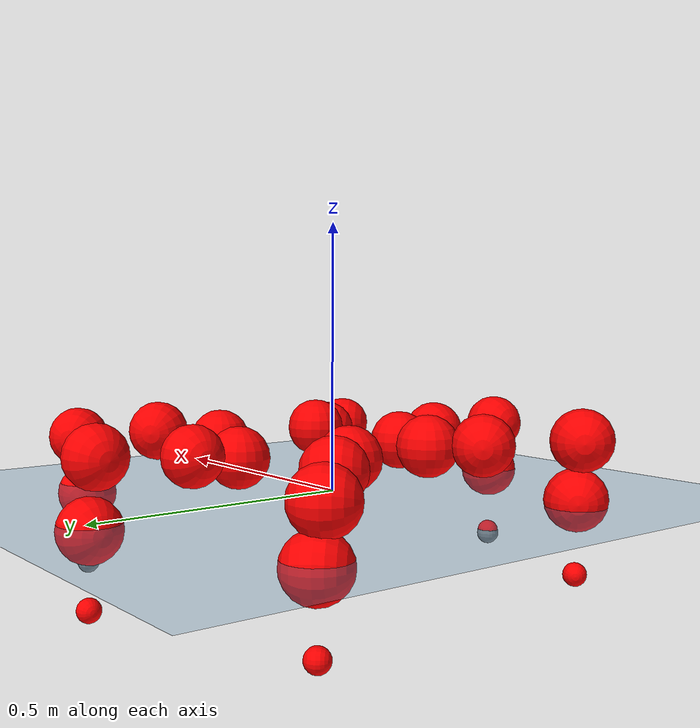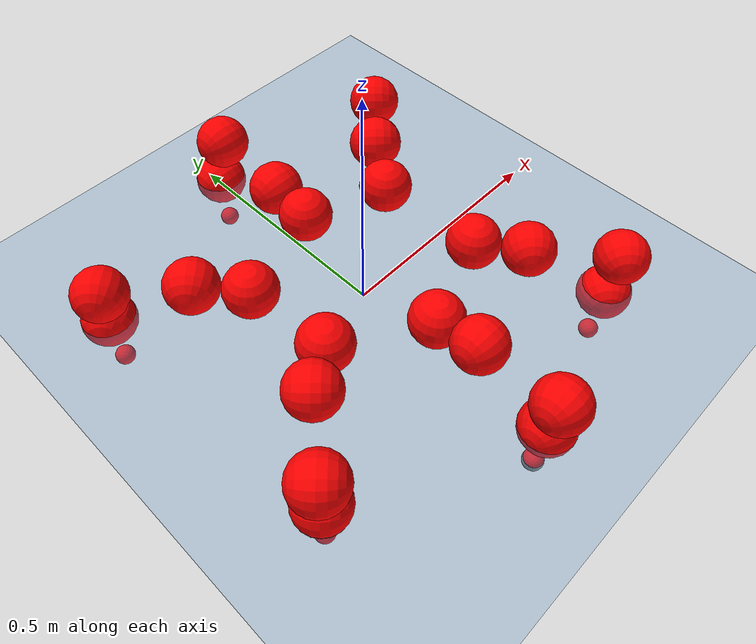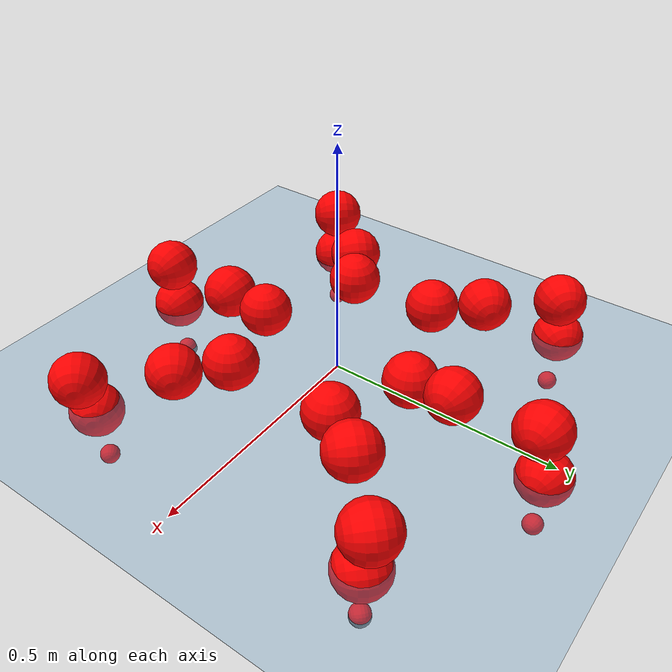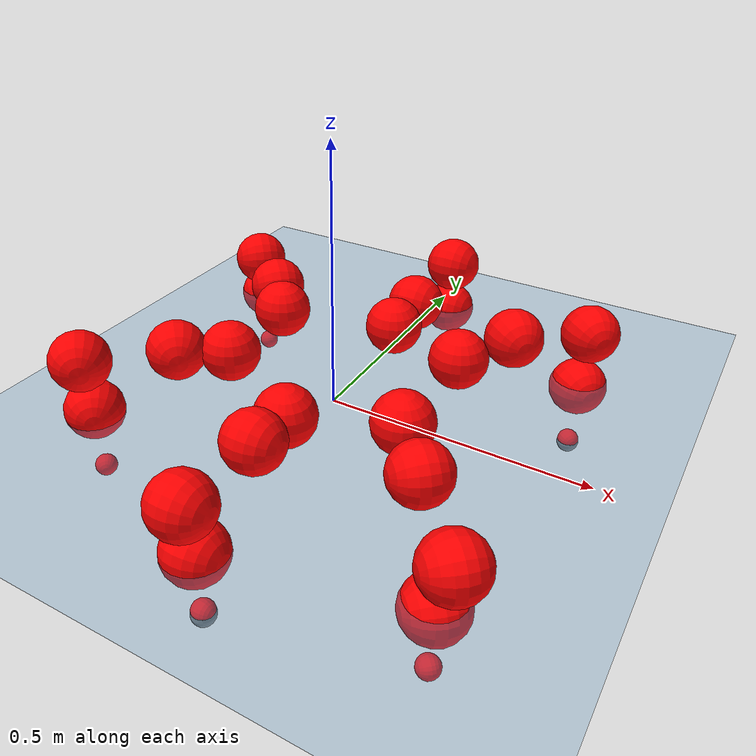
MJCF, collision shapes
<mujoco model="Golem">
  <compiler angle="radian" assetdir="assets" balanceinertia="true" inertiafromgeom="false"/>

  <option timestep="0.005" density="1.2" viscosity="2e-05"/>

  <size nkey="1"/>

  <visual>
    <quality shadowsize="8192"/>
    <map shadowclip="0.5"/>
  </visual>

  <default>
    <default class="/">
      <joint armature="0.01" damping="0.01" frictionloss="0.01"/>
      <geom contype="0" conaffinity="0" group="1" solref="-1000 -80"/>
      <site size="0.01 0.005 0.005" group="5"/>
      <general forcelimited="true" biastype="affine" gainprm="25" biasprm="0 -25 -0.5"/>
      <default class="visual">
        <geom type="mesh" group="2"/>
      </default>
      <default class="collision">
        <geom group="3"/>
      </default>
      <default class="foot">
        <geom size="0.01 0 0" condim="6" group="4" priority="1" solimp="0.015 1 0.01"/>
      </default>
      <default class="reward_collision_sphere">
        <geom group="5" rgba="1 0 0 1"/>
      </default>
    </default>
  </default>

  <asset>
    <texture type="skybox" colorspace="auto" name="//unnamed_texture_0" builtin="gradient" rgb1="0.95 0.95 0.95" rgb2="0.95 0.95 0.95" width="100" height="600"/>
    <texture type="2d" colorspace="auto" name="texplane" builtin="checker" rgb1="0.345 0.575 0.748" rgb2="0.345 0.575 0.748" markrgb="1 1 1" width="512" height="512"/>
    <material name="MatPlane" class="/" texture="texplane" texuniform="true" texrepeat="2 2" specular="0.9"/>
    <mesh name="body" class="/" file="body.stl" scale="0.001 0.001 0.001"/>
    <mesh name="coxa" class="/" file="coxa.stl" scale="0.001 0.001 0.001"/>
    <mesh name="femur" class="/" file="femur.stl" scale="0.001 0.001 0.001"/>
    <mesh name="tibia" class="/" file="tibia.stl" scale="0.001 0.001 0.001"/>
    <mesh name="tarsus" class="/" file="tarsus.stl" scale="0.001 0.001 0.001"/>
  </asset>

  <worldbody>
    <geom name="floor" class="/" size="100 100 0.125" type="plane" group="0" material="MatPlane"/>
    <light name="toplight_shadow" class="/" pos="0 0 5" dir="0.0990148 0.0990148 -0.990148" type="directional" ambient="0.04 0.04 0.04" diffuse="0.55 0.55 0.55" specular="0.12 0.12 0.12"/>
    <light name="toplight_fill" class="/" pos="0 0 5" dir="0.0990148 0.0990148 -0.990148" type="directional" castshadow="false" ambient="0.04 0.04 0.04" diffuse="0.3 0.3 0.3" specular="0.08 0.08 0.08"/>
    <body name="trunk" pos="0.0119554 0.0111405 -0.00591328" quat="0.999989 -0.00215553 -0.000773535 -0.00405132">
      <inertial pos="-0.0118238 -0.00515755 0.016925" quat="0.99839 -0.0355837 0.0420286 0.013581" mass="9.59558" diaginertia="0.0245491 0.0836145 0.0395765"/>
      <joint name="//unnamed_joint_0" type="free"/>
      <geom name="//unnamed_geom_1" class="/" pos="0 0 0.0896702" quat="1 0 0 0" type="mesh" rgba="0.9 0.9 0.9 1" mesh="body"/>
      <site name="imu" class="/" pos="0.0895711 -0.0596385 0.1501" size="0.0141226"/>
      <camera name="track" class="/" pos="0 -3.19108 0" quat="0.707107 0.707107 0 0" mode="trackcom"/>
      <camera name="ego_camera" class="/" pos="0.16122 0 0.14011" quat="-0.5 -0.5 0.5 0.5"/>
      <body name="coxa_RR" pos="-0.212617 -0.117941 0.104388" quat="0.380337 -0.000948262 0.00284327 -0.924843">
        <inertial pos="0.00193332 -0.00539728 -0.00813902" quat="0.999951 0.00434313 0.00794247 0.00395544" mass="0.511306" diaginertia="0.0306695 0.0898572 0.0604525"/>
        <joint name="coxa_joint_RR" class="/" pos="0 0 0" axis="0.0152054 -0.00552279 -0.999869" range="-3.15657 3.32023" armature="0.0183685" damping="0.044825" frictionloss="0.0170534"/>
        <geom name="//unnamed_geom_2" class="/" type="mesh" rgba="0.2 0.2 0.2 1" mesh="coxa"/>
        <geom name="//unnamed_geom_3" class="reward_collision_sphere" size="0.0564906" pos="-0.0372046 0 0"/>
        <body name="femur_RR" pos="0.0605427 -0.0179319 0.0050323" quat="0.499651 -0.499992 0.499879 0.500478">
          <inertial pos="0.0170816 -0.00122088 0.0182158" quat="0.996212 -0.00615765 0.0863995 0.00761603" mass="0.668763" diaginertia="0.0355659 0.126287 0.0669855"/>
          <joint name="femur_joint_RR" class="/" pos="0 0 0" axis="0.0354222 0.034639 -0.998772" range="-2.99415 3.16277" armature="0.0162497" damping="0" frictionloss="0.0135435"/>
          <geom name="//unnamed_geom_4" class="/" type="mesh" rgba="0.9 0.9 0.9 1" mesh="femur"/>
          <geom name="//unnamed_geom_5" class="reward_collision_sphere" size="0.0564906"/>
          <body name="tibia_RR" pos="-0.010413 -0.170738 0.0167922" quat="0.00137406 0.999998 -0.000613769 0.00121855">
            <inertial pos="-0.000379086 -0.000153347 0.0148616" quat="0.99847 -0.0495815 0.0172713 0.0173778" mass="0.38201" diaginertia="0.0241442 0.066293 0.0405957"/>
            <joint name="tibia_joint_RR" class="/" pos="0 0 0" axis="-0.0125274 -0.0688308 0.99755" stiffness="0.0523935" range="-2.91436 3.13265" armature="0.0211618" damping="0.0264478" frictionloss="0.0236431"/>
            <geom name="//unnamed_geom_6" class="/" type="mesh" rgba="0.2 0.2 0.2 1" mesh="tibia"/>
            <geom name="//unnamed_geom_7" class="reward_collision_sphere" size="0.0564906"/>
            <body name="tarsus_RR" pos="0.104984 -0.00888902 -0.000739605" quat="0.999999 0.00101227 -0.000305932 0.000319102">
              <inertial pos="0.0835229 0.00222612 -0.00193403" quat="0.522708 0.476187 0.439923 0.553616" mass="0.496991" diaginertia="0.0297145 0.114417 0.0502653"/>
              <joint name="tarsus_joint_RR" class="/" pos="0 0 0" axis="0.0791421 0.0391143 0.996096" range="-3.06369 3.37513" armature="0.0203478" damping="0.00409451" frictionloss="0.00898011"/>
              <geom name="//unnamed_geom_8" class="/" type="mesh" rgba="0.9 0.9 0.9 1" mesh="tarsus"/>
              <geom name="foot_1" class="foot" size="0.0135141" pos="0.138897 0 0" quat="0 -0.707107 0 0.707107"/>
              <geom name="//unnamed_geom_10" class="reward_collision_sphere" size="0.0564906"/>
              <geom name="//unnamed_geom_11" class="reward_collision_sphere" size="0.021184" pos="0.133316 0 0"/>
              <site name="foot_1" class="foot" pos="0.138897 0 0" quat="0 -0.707107 0 0.707107" size="0.0141226"/>
            </body>
          </body>
        </body>
      </body>
      <body name="coxa_RM" pos="0.00528976 -0.227722 0.0858936" quat="0.708068 -0.00265807 0.00830672 -0.70609">
        <inertial pos="0.0141275 -0.00253416 0.0159104" quat="0.997836 0.00962683 0.0142898 -0.0634568" mass="0.549555" diaginertia="0.0407033 0.102201 0.0658397"/>
        <joint name="coxa_joint_RM" class="/" pos="0 0 0" axis="0.0041494 -0.00124658 -0.999991" range="-3.01753 3.23346" armature="0.0103031" damping="0.0319787" frictionloss="0.020691"/>
        <geom name="//unnamed_geom_12" class="/" type="mesh" rgba="0.2 0.2 0.2 1" mesh="coxa"/>
        <geom name="//unnamed_geom_13" class="reward_collision_sphere" size="0.0564906" pos="-0.0372046 0 0"/>
        <body name="femur_RM" pos="0.059431 0.00549786 0.0122221" quat="0.495158 -0.501168 0.499651 0.503982">
          <inertial pos="-0.0162514 -0.00180013 -0.0002194" quat="0.996402 0.0140068 -0.0809374 0.0208944" mass="0.608242" diaginertia="0.0266791 0.121024 0.0574941"/>
          <joint name="femur_joint_RM" class="/" pos="0 0 0" axis="0.067849 -0.0184592 -0.997525" stiffness="0.0548984" range="-3.1951 3.16666" armature="0.00854909" damping="0" frictionloss="0.0172529"/>
          <geom name="//unnamed_geom_14" class="/" type="mesh" rgba="0.9 0.9 0.9 1" mesh="femur"/>
          <geom name="//unnamed_geom_15" class="reward_collision_sphere" size="0.0564906"/>
          <body name="tibia_RM" pos="-0.00392586 -0.176418 0.000580874" quat="0.000245562 1 -0.000207293 -0.000131971">
            <inertial pos="0.0170375 -0.00896004 0.0112416" quat="0.999628 -0.00448513 0.0036983 -0.0266377" mass="0.444266" diaginertia="0.0222086 0.10964 0.0597134"/>
            <joint name="tibia_joint_RM" class="/" pos="0 0 0" axis="0.0596422 0.0027081 0.998216" stiffness="0.0322658" range="-3.20313 3.31543" armature="0.0124387" damping="0.00660666" frictionloss="0.0202154"/>
            <geom name="//unnamed_geom_16" class="/" type="mesh" rgba="0.2 0.2 0.2 1" mesh="tibia"/>
            <geom name="//unnamed_geom_17" class="reward_collision_sphere" size="0.0564906"/>
            <body name="tarsus_RM" pos="0.0984133 -0.00910362 -0.00580592" quat="0.999998 0.0016878 0.000371033 0.000273638">
              <inertial pos="0.0808711 0.00768344 0.00418489" quat="0.508524 0.519572 0.492782 0.478136" mass="0.481192" diaginertia="0.0314625 0.0953265 0.0406645"/>
              <joint name="tarsus_joint_RM" class="/" pos="0 0 0" axis="-0.0641399 -0.0195212 0.99775" range="-3.21566 3.1333" armature="0.0153227" damping="0.012511" frictionloss="0.0113862"/>
              <geom name="//unnamed_geom_18" class="/" type="mesh" rgba="0.9 0.9 0.9 1" mesh="tarsus"/>
              <geom name="foot_2" class="foot" size="0.0223723" pos="0.138897 0 0" quat="0 -0.707107 0 0.707107"/>
              <geom name="//unnamed_geom_20" class="reward_collision_sphere" size="0.0564906"/>
              <geom name="//unnamed_geom_21" class="reward_collision_sphere" size="0.021184" pos="0.133316 0 0"/>
              <site name="foot_2" class="foot" pos="0.138897 0 0" quat="0 -0.707107 0 0.707107" size="0.0141226"/>
            </body>
          </body>
        </body>
      </body>
      <body name="coxa_RF" pos="0.217796 -0.147371 0.0987795" quat="0.923941 0.000391574 -0.000181217 -0.382534">
        <inertial pos="0.0178624 -0.00569275 -0.00306898" quat="0.997376 0.0671614 0.00408637 0.0267102" mass="0.383211" diaginertia="0.0224177 0.110562 0.0487072"/>
        <joint name="coxa_joint_RF" class="/" pos="0 0 0" axis="0.00141759 0.00118636 -0.999998" range="-2.95563 3.12292" armature="0.00544611" damping="0.043885" frictionloss="0.0197704"/>
        <geom name="//unnamed_geom_22" class="/" type="mesh" rgba="0.2 0.2 0.2 1" mesh="coxa"/>
        <geom name="//unnamed_geom_23" class="reward_collision_sphere" size="0.0564906" pos="-0.0372046 0 0"/>
        <body name="femur_RF" pos="0.0752444 -0.00701225 -0.0158981" quat="0.497061 -0.499833 0.500538 0.502552">
          <inertial pos="-0.0108835 -0.0169718 -0.0104837" quat="0.999794 -0.0193377 -0.00524557 0.00338839" mass="0.639559" diaginertia="0.0246413 0.120144 0.0562856"/>
          <joint name="femur_joint_RF" class="/" pos="0 0 0" axis="0.0401535 0.0421665 -0.998303" stiffness="0.082844" range="-3.24957 3.38146" armature="0.0134583" damping="0" frictionloss="0.0190207"/>
          <geom name="//unnamed_geom_24" class="/" type="mesh" rgba="0.9 0.9 0.9 1" mesh="femur"/>
          <geom name="//unnamed_geom_25" class="reward_collision_sphere" size="0.0564906"/>
          <body name="tibia_RF" pos="0.00952724 -0.186044 -0.0136717" quat="-5.45939e-05 0.999998 0.00121949 -0.00141764">
            <inertial pos="0.0156186 0.0126068 -0.0145038" quat="0.998516 -0.0482123 -0.0253317 0.000527241" mass="0.468224" diaginertia="0.0296832 0.0972961 0.0517301"/>
            <joint name="tibia_joint_RF" class="/" pos="0 0 0" axis="-0.0218167 -0.0190585 0.99958" range="-3.21523 3.39578" armature="0.0165148" damping="0.100083" frictionloss="0.0116429"/>
            <geom name="//unnamed_geom_26" class="/" type="mesh" rgba="0.2 0.2 0.2 1" mesh="tibia"/>
            <geom name="//unnamed_geom_27" class="reward_collision_sphere" size="0.0564906"/>
            <body name="tarsus_RF" pos="0.0950383 -0.0157495 0.0152557" quat="0.999981 0.00145755 -0.00240961 -0.00542544">
              <inertial pos="0.0779634 0.000167852 0.0027874" quat="0.485123 0.497031 0.526692 0.490113" mass="0.512124" diaginertia="0.0262488 0.0819655 0.0643797"/>
              <joint name="tarsus_joint_RF" class="/" pos="0 0 0" axis="-0.00745469 -0.041145 0.999125" stiffness="0.0354812" range="-2.93181 3.11783" armature="0.00481604" damping="0" frictionloss="0.00144628"/>
              <geom name="//unnamed_geom_28" class="/" type="mesh" rgba="0.9 0.9 0.9 1" mesh="tarsus"/>
              <geom name="foot_3" class="foot" size="0.00549237" pos="0.138897 0 0" quat="0 -0.707107 0 0.707107"/>
              <geom name="//unnamed_geom_30" class="reward_collision_sphere" size="0.0564906"/>
              <geom name="//unnamed_geom_31" class="reward_collision_sphere" size="0.021184" pos="0.133316 0 0"/>
              <site name="foot_3" class="foot" pos="0.138897 0 0" quat="0 -0.707107 0 0.707107" size="0.0141226"/>
            </body>
          </body>
        </body>
      </body>
      <body name="coxa_LR" pos="-0.228729 0.124889 0.101982" quat="0.37624 0.00330451 0.00169094 0.926515">
        <inertial pos="0.00537101 -0.00673363 0.017454" quat="0.997719 0.0291406 0.0596156 0.0124288" mass="0.819511" diaginertia="0.0361035 0.129177 0.0615987"/>
        <joint name="coxa_joint_LR" class="/" pos="0 0 0" axis="-0.000295199 -0.000250993 -1" range="-2.98969 2.78751" armature="0.00475574" damping="0" frictionloss="0.0264988"/>
        <geom name="//unnamed_geom_32" class="/" type="mesh" rgba="0.2 0.2 0.2 1" mesh="coxa"/>
        <geom name="//unnamed_geom_33" class="reward_collision_sphere" size="0.0564906" pos="-0.0372046 0 0"/>
        <body name="femur_LR" pos="0.0768791 -0.0115143 -0.00160747" quat="0.499927 -0.501042 0.500381 0.498647">
          <inertial pos="-0.000366406 0.00412404 0.00440905" quat="0.998519 -0.00704 -0.0539247 0.00133071" mass="0.633886" diaginertia="0.0370239 0.0908755 0.0580724"/>
          <joint name="femur_joint_LR" class="/" pos="0 0 0" axis="0.0360818 0.0131402 0.999262" stiffness="0.0580072" range="-3.20816 3.40827" armature="0.00610735" damping="0" frictionloss="0.0194497"/>
          <geom name="//unnamed_geom_34" class="/" type="mesh" rgba="0.9 0.9 0.9 1" mesh="femur"/>
          <geom name="//unnamed_geom_35" class="reward_collision_sphere" size="0.0564906"/>
          <body name="tibia_LR" pos="0.0143569 -0.176272 0.00743527" quat="-0.00615045 0.999977 0.00220537 0.00166878">
            <inertial pos="-0.0116444 -0.0165254 -0.00253933" quat="0.997609 -0.0505312 -0.00362953 -0.0470172" mass="0.685873" diaginertia="0.023921 0.08934 0.0691336"/>
            <joint name="tibia_joint_LR" class="/" pos="0 0 0" axis="-0.00107207 0.00140552 -0.999998" range="-3.09637 3.16626" armature="0.00818657" damping="0" frictionloss="0.00649462"/>
            <geom name="//unnamed_geom_36" class="/" type="mesh" rgba="0.2 0.2 0.2 1" mesh="tibia"/>
            <geom name="//unnamed_geom_37" class="reward_collision_sphere" size="0.0564906"/>
            <body name="tarsus_LR" pos="0.0936833 0.008093 0.0100589" quat="0.999989 -0.00255715 -0.000940868 0.00383873">
              <inertial pos="0.0843734 0.0116089 0.00819958" quat="0.54006 0.478741 0.49487 0.48399" mass="0.733844" diaginertia="0.0385382 0.124413 0.066477"/>
              <joint name="tarsus_joint_LR" class="/" pos="0 0 0" axis="0.00803962 0.0190807 -0.999786" range="-3.02821 3.26214" armature="0.0273143" damping="0" frictionloss="0.0199276"/>
              <geom name="//unnamed_geom_38" class="/" type="mesh" rgba="0.9 0.9 0.9 1" mesh="tarsus"/>
              <geom name="foot_4" class="foot" size="0.010708" pos="0.138897 0 0" quat="0.707107 0 -0.707107 0"/>
              <geom name="//unnamed_geom_40" class="reward_collision_sphere" size="0.0564906"/>
              <geom name="//unnamed_geom_41" class="reward_collision_sphere" size="0.021184" pos="0.133316 0 0"/>
              <site name="foot_4" class="foot" pos="0.138897 0 0" quat="0.707107 0 -0.707107 0" size="0.0141226"/>
            </body>
          </body>
        </body>
      </body>
      <body name="coxa_LM" pos="0.0120307 0.218734 0.0854995" quat="0.708817 0.00464461 -0.00774306 0.705335">
        <inertial pos="-0.0144718 0.0155342 0.0110815" quat="0.997443 -0.0342611 0.0324598 -0.0536612" mass="0.543331" diaginertia="0.0299643 0.0840942 0.0485165"/>
        <joint name="coxa_joint_LM" class="/" pos="0 0 0" axis="0.00101552 -0.00199843 -0.999997" range="-3.09312 3.0965" armature="0.002157" damping="0.0590148" frictionloss="0.00857901"/>
        <geom name="//unnamed_geom_42" class="/" type="mesh" rgba="0.2 0.2 0.2 1" mesh="coxa"/>
        <geom name="//unnamed_geom_43" class="reward_collision_sphere" size="0.0564906" pos="-0.0372046 0 0"/>
        <body name="femur_LM" pos="0.0566507 -0.000248943 0.0092984" quat="0.50114 -0.502308 0.502131 0.494378">
          <inertial pos="0.0141077 -6.78267e-05 0.0156254" quat="0.998458 0.0160996 -0.0204108 -0.0490521" mass="0.38366" diaginertia="0.0266784 0.0819199 0.045361"/>
          <joint name="femur_joint_LM" class="/" pos="0 0 0" axis="-0.00751252 0.0139889 0.999874" stiffness="0.00501574" range="-3.37321 2.99411" armature="0.0051746" damping="0.0561634" frictionloss="0.013968"/>
          <geom name="//unnamed_geom_44" class="/" type="mesh" rgba="0.9 0.9 0.9 1" mesh="femur"/>
          <geom name="//unnamed_geom_45" class="reward_collision_sphere" size="0.0564906"/>
          <body name="tibia_LM" pos="-0.0113665 -0.180637 0.000444809" quat="-0.000932488 0.999993 -0.00251521 -0.00262545">
            <inertial pos="-0.0171339 -0.0177885 -0.0181914" quat="0.999953 0.00146075 -0.00403194 0.00873189" mass="0.592753" diaginertia="0.0342962 0.128664 0.0472288"/>
            <joint name="tibia_joint_LM" class="/" pos="0 0 0" axis="-0.0510413 -0.0147785 -0.998587" stiffness="0.0643244" range="-3.28566 3.1046" armature="0.00504835" damping="0" frictionloss="0.0235885"/>
            <geom name="//unnamed_geom_46" class="/" type="mesh" rgba="0.2 0.2 0.2 1" mesh="tibia"/>
            <geom name="//unnamed_geom_47" class="reward_collision_sphere" size="0.0564906"/>
            <body name="tarsus_LM" pos="0.117744 0.0148635 -0.0139703" quat="0.999982 0.00424222 -0.00248282 -0.00345202">
              <inertial pos="0.0659229 -0.00905722 -0.0114999" quat="0.498748 0.518485 0.488231 0.494019" mass="0.438124" diaginertia="0.0277111 0.0620627 0.0471845"/>
              <joint name="tarsus_joint_LM" class="/" pos="0 0 0" axis="0.0582502 0.0381498 -0.997573" range="-2.76075 3.04204" armature="0.0132191" damping="0" frictionloss="0.0133527"/>
              <geom name="//unnamed_geom_48" class="/" type="mesh" rgba="0.9 0.9 0.9 1" mesh="tarsus"/>
              <geom name="foot_5" class="foot" size="0.0136993" pos="0.138897 0 0" quat="0.707107 0 -0.707107 0"/>
              <geom name="//unnamed_geom_50" class="reward_collision_sphere" size="0.0564906"/>
              <geom name="//unnamed_geom_51" class="reward_collision_sphere" size="0.021184" pos="0.133316 0 0"/>
              <site name="foot_5" class="foot" pos="0.138897 0 0" quat="0.707107 0 -0.707107 0" size="0.0141226"/>
            </body>
          </body>
        </body>
      </body>
      <body name="coxa_LF" pos="0.20887 0.142614 0.0944511" quat="0.920839 0.000119743 0.000795703 0.389942">
        <inertial pos="0.00168224 -0.0174406 0.00261552" quat="0.999858 0.014614 0.00525526 -0.00657862" mass="0.51573" diaginertia="0.0261587 0.0670448 0.0409515"/>
        <joint name="coxa_joint_LF" class="/" pos="0 0 0" axis="0.00775525 0.0585802 -0.998253" range="-3.1621 3.0573" armature="0.00174376" damping="0" frictionloss="0.00884089"/>
        <geom name="//unnamed_geom_52" class="/" type="mesh" rgba="0.2 0.2 0.2 1" mesh="coxa"/>
        <geom name="//unnamed_geom_53" class="reward_collision_sphere" size="0.0564906" pos="-0.0372046 0 0"/>
        <body name="femur_LF" pos="0.0809211 0.0188709 0.0165672" quat="0.494581 -0.503097 0.499147 0.503126">
          <inertial pos="-0.0123596 0.00611496 -0.018157" quat="0.997132 0.0101036 -0.0518538 -0.0541879" mass="0.528627" diaginertia="0.0334217 0.0791818 0.0564996"/>
          <joint name="femur_joint_LF" class="/" pos="0 0 0" axis="-0.0530089 -0.0420894 0.997707" stiffness="0.0579386" range="-3.09486 3.47832" armature="0.0144275" damping="0.0710335" frictionloss="0.00933269"/>
          <geom name="//unnamed_geom_54" class="/" type="mesh" rgba="0.9 0.9 0.9 1" mesh="femur"/>
          <geom name="//unnamed_geom_55" class="reward_collision_sphere" size="0.0564906"/>
          <body name="tibia_LF" pos="0.012721 -0.162202 -0.00319924" quat="-0.00238876 0.999971 0.000482143 0.00726596">
            <inertial pos="-0.0065772 0.0165337 0.000535862" quat="0.999629 -0.00270432 0.0271002 -8.90027e-05" mass="0.581396" diaginertia="0.0331192 0.102333 0.0591546"/>
            <joint name="tibia_joint_LF" class="/" pos="0 0 0" axis="-0.0342112 0.0636921 -0.997383" stiffness="0.0166197" range="-2.84874 3.06171" armature="0.00623754" damping="0.00589641" frictionloss="0.0028862"/>
            <geom name="//unnamed_geom_56" class="/" type="mesh" rgba="0.2 0.2 0.2 1" mesh="tibia"/>
            <geom name="//unnamed_geom_57" class="reward_collision_sphere" size="0.0564906"/>
            <body name="tarsus_LF" pos="0.11346 -0.0116222 0.00937979" quat="0.999957 -0.00518086 -0.00464593 0.00610506">
              <inertial pos="0.0862757 0.00532105 0.00343004" quat="0.488136 0.517256 0.498062 0.496088" mass="0.533745" diaginertia="0.0307254 0.106583 0.0609684"/>
              <joint name="tarsus_joint_LF" class="/" pos="0 0 0" axis="-0.0817082 0.0395898 -0.99587" range="-3.30648 3.42752" armature="0.00849604" damping="0.082107" frictionloss="0.00689809"/>
              <geom name="//unnamed_geom_58" class="/" type="mesh" rgba="0.9 0.9 0.9 1" mesh="tarsus"/>
              <geom name="foot_6" class="foot" size="0.0218272" pos="0.138897 0 0" quat="0.707107 0 -0.707107 0"/>
              <geom name="//unnamed_geom_60" class="reward_collision_sphere" size="0.0564906"/>
              <geom name="//unnamed_geom_61" class="reward_collision_sphere" size="0.021184" pos="0.133316 0 0"/>
              <site name="foot_6" class="foot" pos="0.138897 0 0" quat="0.707107 0 -0.707107 0" size="0.0141226"/>
            </body>
          </body>
        </body>
      </body>
    </body>
  </worldbody>

  <contact>
    <pair class="/" geom1="floor" geom2="foot_1" name="//unnamed_contact_0"/>
    <pair class="/" geom1="floor" geom2="foot_2" name="//unnamed_contact_1"/>
    <pair class="/" geom1="floor" geom2="foot_3" name="//unnamed_contact_2"/>
    <pair class="/" geom1="floor" geom2="foot_4" name="//unnamed_contact_3"/>
    <pair class="/" geom1="floor" geom2="foot_5" name="//unnamed_contact_4"/>
    <pair class="/" geom1="floor" geom2="foot_6" name="//unnamed_contact_5"/>
  </contact>

  <actuator>
    <general name="coxa_joint_RR" class="/" joint="coxa_joint_RR" forcerange="-16.7518 16.7518" gainprm="27.8896" biasprm="0 -27.8896 -0.909246"/>
    <general name="femur_joint_RR" class="/" joint="femur_joint_RR" forcerange="-6.53109 6.53109" gainprm="27.8896" biasprm="0 -27.8896 -0.909246"/>
    <general name="tibia_joint_RR" class="/" joint="tibia_joint_RR" forcerange="-17.1897 17.1897" gainprm="27.8896" biasprm="0 -27.8896 -0.909246"/>
    <general name="tarsus_joint_RR" class="/" joint="tarsus_joint_RR" forcerange="-6.17774 6.17774" gainprm="27.8896" biasprm="0 -27.8896 -0.909246"/>
    <general name="coxa_joint_RM" class="/" joint="coxa_joint_RM" forcerange="-10.0231 10.0231" gainprm="27.8896" biasprm="0 -27.8896 -0.909246"/>
    <general name="femur_joint_RM" class="/" joint="femur_joint_RM" forcerange="-10.6557 10.6557" gainprm="27.8896" biasprm="0 -27.8896 -0.909246"/>
    <general name="tibia_joint_RM" class="/" joint="tibia_joint_RM" forcerange="-16.3399 16.3399" gainprm="27.8896" biasprm="0 -27.8896 -0.909246"/>
    <general name="tarsus_joint_RM" class="/" joint="tarsus_joint_RM" forcerange="-3.59074 3.59074" gainprm="27.8896" biasprm="0 -27.8896 -0.909246"/>
    <general name="coxa_joint_RF" class="/" joint="coxa_joint_RF" forcerange="-7.84066 7.84066" gainprm="27.8896" biasprm="0 -27.8896 -0.909246"/>
    <general name="femur_joint_RF" class="/" joint="femur_joint_RF" forcerange="-11.469 11.469" gainprm="27.8896" biasprm="0 -27.8896 -0.909246"/>
    <general name="tibia_joint_RF" class="/" joint="tibia_joint_RF" forcerange="-3.99079 3.99079" gainprm="27.8896" biasprm="0 -27.8896 -0.909246"/>
    <general name="tarsus_joint_RF" class="/" joint="tarsus_joint_RF" forcerange="-6.62207 6.62207" gainprm="27.8896" biasprm="0 -27.8896 -0.909246"/>
    <general name="coxa_joint_LR" class="/" joint="coxa_joint_LR" forcerange="-10.1559 10.1559" gainprm="27.8896" biasprm="0 -27.8896 -0.909246"/>
    <general name="femur_joint_LR" class="/" joint="femur_joint_LR" forcerange="-15.8126 15.8126" gainprm="27.8896" biasprm="0 -27.8896 -0.909246"/>
    <general name="tibia_joint_LR" class="/" joint="tibia_joint_LR" forcerange="-13.9585 13.9585" gainprm="27.8896" biasprm="0 -27.8896 -0.909246"/>
    <general name="tarsus_joint_LR" class="/" joint="tarsus_joint_LR" forcerange="-15.0104 15.0104" gainprm="27.8896" biasprm="0 -27.8896 -0.909246"/>
    <general name="coxa_joint_LM" class="/" joint="coxa_joint_LM" forcerange="-13.9602 13.9602" gainprm="27.8896" biasprm="0 -27.8896 -0.909246"/>
    <general name="femur_joint_LM" class="/" joint="femur_joint_LM" forcerange="-13.1352 13.1352" gainprm="27.8896" biasprm="0 -27.8896 -0.909246"/>
    <general name="tibia_joint_LM" class="/" joint="tibia_joint_LM" forcerange="-15.3307 15.3307" gainprm="27.8896" biasprm="0 -27.8896 -0.909246"/>
    <general name="tarsus_joint_LM" class="/" joint="tarsus_joint_LM" forcerange="-12.7293 12.7293" gainprm="27.8896" biasprm="0 -27.8896 -0.909246"/>
    <general name="coxa_joint_LF" class="/" joint="coxa_joint_LF" forcerange="-13.5676 13.5676" gainprm="27.8896" biasprm="0 -27.8896 -0.909246"/>
    <general name="femur_joint_LF" class="/" joint="femur_joint_LF" forcerange="-7.62871 7.62871" gainprm="27.8896" biasprm="0 -27.8896 -0.909246"/>
    <general name="tibia_joint_LF" class="/" joint="tibia_joint_LF" forcerange="-5.55643 5.55643" gainprm="27.8896" biasprm="0 -27.8896 -0.909246"/>
    <general name="tarsus_joint_LF" class="/" joint="tarsus_joint_LF" forcerange="-13.8899 13.8899" gainprm="27.8896" biasprm="0 -27.8896 -0.909246"/>
  </actuator>

  <sensor>
    <gyro site="imu" name="imu_angular_velocity"/>
    <velocimeter site="imu" name="imu_linear_velocity"/>
    <framelinvel objtype="site" objname="foot_1" name="foot_1_global_linear_velocity"/>
    <framelinvel objtype="site" objname="foot_2" name="foot_2_global_linear_velocity"/>
    <framelinvel objtype="site" objname="foot_3" name="foot_3_global_linear_velocity"/>
    <framelinvel objtype="site" objname="foot_4" name="foot_4_global_linear_velocity"/>
    <framelinvel objtype="site" objname="foot_5" name="foot_5_global_linear_velocity"/>
    <framelinvel objtype="site" objname="foot_6" name="foot_6_global_linear_velocity"/>
  </sensor>

  <keyframe>
    <key name="home" qpos="0 0 0.1457 1 0 0 0 0 0 0 0 0 0 0 0 0 0 0 0 0 0 0 0 0 0 0 0 0 0 0 0"/>
  </keyframe>
</mujoco>
